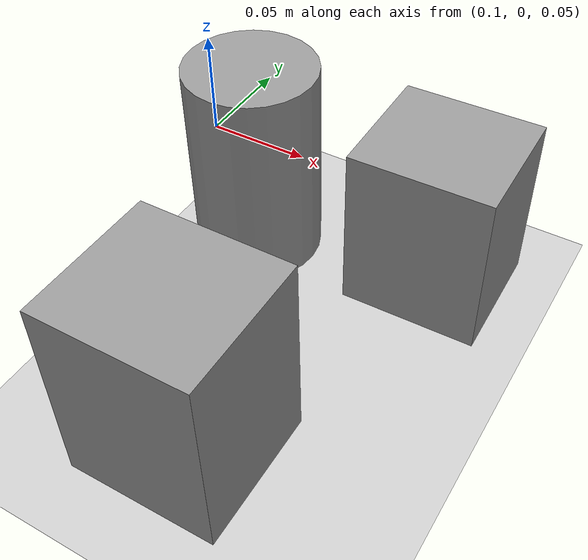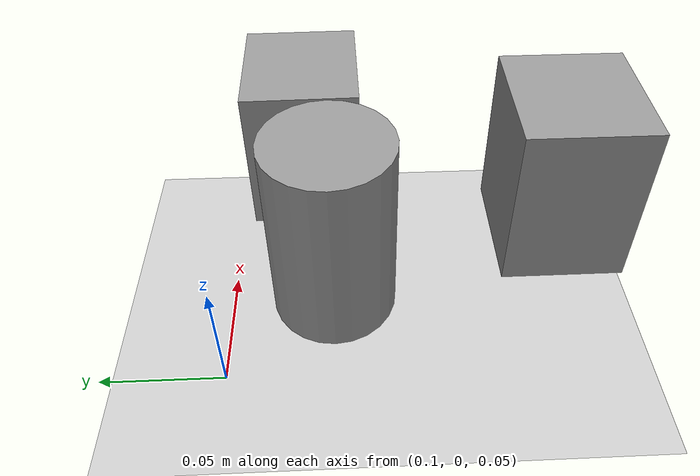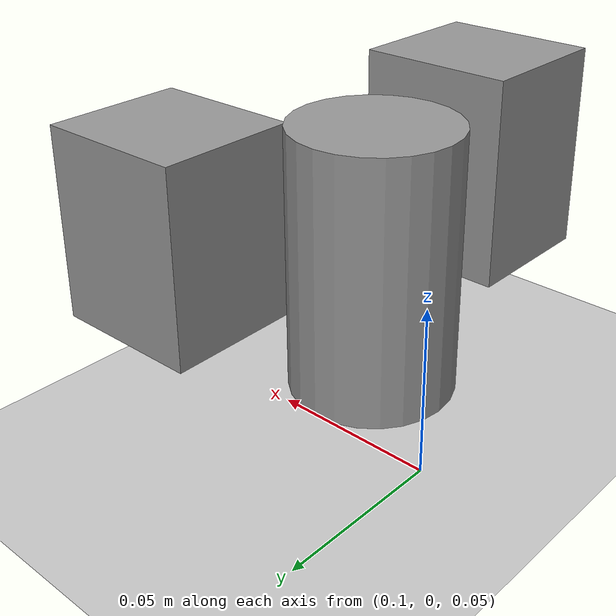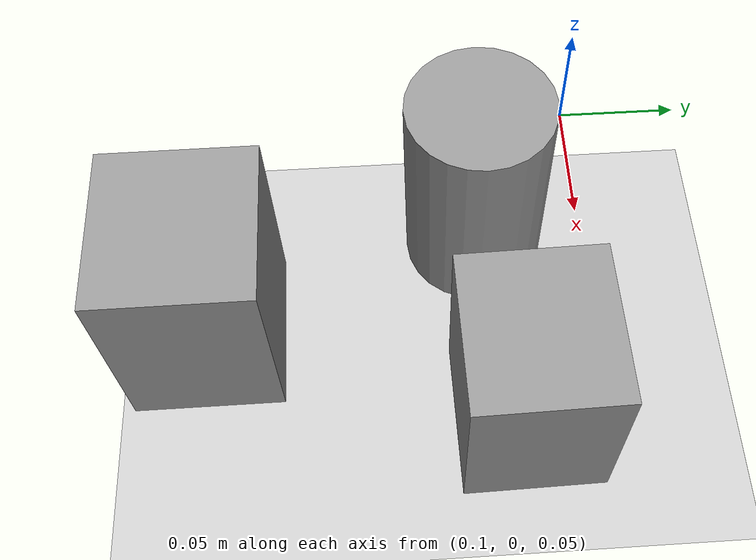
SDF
<sdf version="1.7">
 <world name="default">
  <light name="sun" type="directional">
   <pose>0 0 10 0 -0 0</pose>
   <diffuse>0.8 0.8 0.8 1</diffuse>
   <specular>0.2 0.2 0.2 1</specular>
   <attenuation>
    <range>1000</range>
    <constant>0.9</constant>
    <linear>0.01</linear>
    <quadratic>0.001</quadratic>
   </attenuation>
   <direction>-0.5 0.1 -0.9</direction>
   <spot><inner_angle>0</inner_angle><outer_angle>0</outer_angle><falloff>0</falloff></spot>
  </light>
  <model name="ground_plane">
   <static>1</static>
   <link name="link">
    <collision name="collision">
     <geometry><plane><normal>0 0 1</normal><size>100 100</size></plane></geometry>
     <surface><friction><ode><mu>100</mu><mu2>50</mu2></ode></friction></surface>
    </collision>
    <visual name="visual">
     <cast_shadows>0</cast_shadows>
     <geometry><plane><normal>0 0 1</normal><size>100 100</size></plane></geometry>
     <material>
      <script><uri>file://media/materials/scripts/gazebo.material</uri><name>Gazebo/Grey</name></script>
     </material>
    </visual>
   </link>
  </model>
  <gravity>0 0 -9.8</gravity>
  <magnetic_field>6e-06 2.3e-05 -4.2e-05</magnetic_field>
  <atmosphere type="adiabatic"/>
  <physics type="ode">
   <max_step_size>0.001</max_step_size>
   <real_time_factor>1</real_time_factor>
   <real_time_update_rate>1000</real_time_update_rate>
  </physics>
  <scene><ambient>0.4 0.4 0.4 1</ambient><background>0.7 0.7 0.7 1</background><shadows>1</shadows></scene>
  <audio><device>default</device></audio>
  <spherical_coordinates>
   <surface_model>EARTH_WGS84</surface_model>
   <latitude_deg>0</latitude_deg>
   <longitude_deg>0</longitude_deg>
   <elevation>0</elevation>
   <heading_deg>0</heading_deg>
  </spherical_coordinates>
  <model name="unit_box_clone">
   <pose>0.232899 -0.028665 0.072479 -2.6e-05 -1.7e-05 0.017706</pose>
   <link name="link">
    <inertial>
     <mass>1</mass>
     <inertia>
      <ixx>0.166667</ixx>
      <ixy>0</ixy>
      <ixz>0</ixz>
      <iyy>0.166667</iyy>
      <iyz>0</iyz>
      <izz>0.166667</izz>
     </inertia>
    </inertial>
    <collision name="collision">
     <geometry><box><size>0.0594771 0.0542586 0.0749572</size></box></geometry>
    </collision>
    <visual name="visual">
     <geometry><box><size>0.0594771 0.0542586 0.0749572</size></box></geometry>
     <material>
      <script><name>Gazebo/Grey</name><uri>file://media/materials/scripts/gazebo.material</uri></script>
     </material>
    </visual>
   </link>
  </model>
  <model name="unit_cylinder">
   <pose>0.152692 -0.042608 0.080148 0.00011 -0.000245 0.008468</pose>
   <link name="link">
    <inertial>
     <mass>1</mass>
     <inertia><ixx>0.145833</ixx><ixy>0</ixy><ixz>0</ixz><iyy>0.145833</iyy><iyz>0</iyz><izz>0.125</izz></inertia>
    </inertial>
    <collision name="collision">
     <geometry><cylinder><radius>0.0279075</radius><length>0.09023</length></cylinder></geometry>
    </collision>
    <visual name="visual">
     <geometry><cylinder><radius>0.0279075</radius><length>0.09023</length></cylinder></geometry>
     <material>
      <script><name>Gazebo/Grey</name><uri>file://media/materials/scripts/gazebo.material</uri></script>
     </material>
    </visual>
   </link>
  </model>
  <model name="unit_box">
   <pose>0.190797 -0.150931 0.076744 -2.4e-05 0.000104 0.002374</pose>
   <link name="link">
    <inertial>
     <mass>1</mass>
     <inertia>
      <ixx>0.166667</ixx>
      <ixy>0</ixy>
      <ixz>0</ixz>
      <iyy>0.166667</iyy>
      <iyz>0</iyz>
      <izz>0.166667</izz>
     </inertia>
    </inertial>
    <collision name="collision">
     <geometry><box><size>0.0623849 0.0582712 0.0834818</size></box></geometry>
    </collision>
    <visual name="visual">
     <geometry><box><size>0.0623849 0.0582712 0.0834818</size></box></geometry>
     <material>
      <script><name>Gazebo/Grey</name><uri>file://media/materials/scripts/gazebo.material</uri></script>
     </material>
    </visual>
   </link>
  </model>
 </world>
</sdf>
